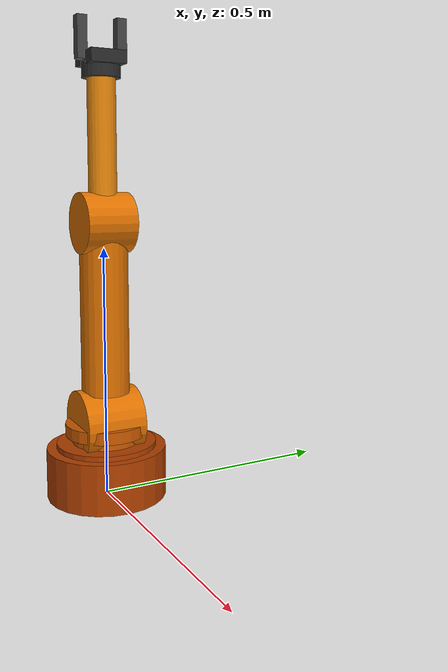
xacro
<?xml version="1.0"?>
<robot xmlns:xacro="http://www.ros.org/wiki/xacro" name="robotic_arm">
    <xacro:arg name="initial_positions_file" default="initial_positions.yaml" />

    <!-- Import robotic_arm urdf file -->
    <xacro:include filename="$(find robotic_arm_description)/urdf/robotic_arm.urdf.xacro" />

    <!-- Import control_xacro -->
    <xacro:include filename="robotic_arm.ros2_control.xacro" />

    <xacro:robotic_arm_ros2_control name="FakeSystem" initial_positions_file="$(arg initial_positions_file)"/>

</robot>

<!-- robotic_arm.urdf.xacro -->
<robot xmlns:xacro="http://www.ros.org/wiki/xacro" name="robotic_arm">

  <!-- Kuka-style orange gradient base → fingers -->
  <material name="c1"><color rgba="0.70 0.25 0.00 1"/></material>  <!-- base      — deep orange -->
  <material name="c2"><color rgba="0.80 0.35 0.00 1"/></material>  <!-- shoulder  -->
  <material name="c3"><color rgba="0.88 0.45 0.00 1"/></material>  <!-- upper arm -->
  <material name="c4"><color rgba="0.94 0.55 0.05 1"/></material>  <!-- forearm   -->
  <material name="c5"><color rgba="0.18 0.18 0.18 1"/></material>  <!-- wrist     — dark -->
  <material name="c6"><color rgba="0.28 0.28 0.28 1"/></material>  <!-- fingers   — dark grey -->

  <link name="world"/>
  <joint name="world_joint" type="fixed">
    <parent link="world"/>
    <child link="base_link"/>
    <origin xyz="0 0 0" rpy="0 0 0"/>
  </joint>

  <!-- BASE — wide cylinder with top coupling disc -->
  <link name="base_link">
    <visual>
      <origin xyz="0 0 0.05" rpy="0 0 0"/>
      <geometry><cylinder length="0.10" radius="0.12"/></geometry>
      <material name="c1"/>
    </visual>
    <visual>
      <origin xyz="0 0 0.105" rpy="0 0 0"/>
      <geometry><cylinder length="0.01" radius="0.10"/></geometry>
      <material name="c1"/>
    </visual>
    <collision>
      <geometry><cylinder length="0.1" radius="0.12"/></geometry>
    </collision>
  </link>

  <joint name="joint_1" type="continuous">
    <parent link="base_link"/>
    <child link="shoulder_link"/>
    <origin xyz="0 0 0.05" rpy="0 0 0"/>
    <axis xyz="0 0 1"/>
  </joint>

  <!-- SHOULDER — stacked disc / body / disc (Kuka style) -->
  <link name="shoulder_link">
    <visual>
      <!-- bottom coupling disc (joint_1 plane) -->
      <origin xyz="0 0 0.012" rpy="0 0 0"/>
      <geometry><cylinder length="0.024" radius="0.082"/></geometry>
      <material name="c2"/>
    </visual>
    <visual>
      <!-- shoulder body -->
      <origin xyz="0 0 0.052" rpy="0 0 0"/>
      <geometry><cylinder length="0.052" radius="0.068"/></geometry>
      <material name="c2"/>
    </visual>
    <visual>
      <!-- top coupling disc (joint_2 plane) -->
      <origin xyz="0 0 0.088" rpy="0 0 0"/>
      <geometry><cylinder length="0.024" radius="0.082"/></geometry>
      <material name="c2"/>
    </visual>
    <collision>
      <origin xyz="0 0 0.05" rpy="0 0 0"/>
      <geometry><cylinder length="0.1" radius="0.08"/></geometry>
    </collision>
  </link>

  <joint name="joint_2" type="revolute">
    <parent link="shoulder_link"/>
    <child link="upper_arm"/>
    <origin xyz="0 0 0.1" rpy="0 0 0"/>
    <axis xyz="0 1 0"/>
    <limit lower="-1.57" upper="1.57" effort="50.0" velocity="1.0"/>
  </joint>

  <!-- UPPER ARM — horizontal knuckle at joint_2, arm tube, knuckle at joint_3 end -->
  <link name="upper_arm">
    <visual>
      <!-- joint_2 horizontal knuckle (Y-axis pivot housing) -->
      <origin xyz="0 0 0" rpy="1.5708 0 0"/>
      <geometry><cylinder length="0.12" radius="0.068"/></geometry>
      <material name="c3"/>
    </visual>
    <visual>
      <!-- arm tube -->
      <origin xyz="0 0 0.22" rpy="0 0 0"/>
      <geometry><cylinder length="0.32" radius="0.048"/></geometry>
      <material name="c3"/>
    </visual>
    <visual>
      <!-- joint_3 horizontal knuckle at top end -->
      <origin xyz="0 0 0.40" rpy="1.5708 0 0"/>
      <geometry><cylinder length="0.10" radius="0.060"/></geometry>
      <material name="c3"/>
    </visual>
    <collision>
      <origin xyz="0 0 0.2" rpy="0 0 0"/>
      <geometry><cylinder length="0.4" radius="0.055"/></geometry>
    </collision>
  </link>

  <joint name="joint_3" type="revolute">
    <parent link="upper_arm"/>
    <child link="forearm"/>
    <origin xyz="0 0 0.4" rpy="0 0 0"/>
    <axis xyz="0 1 0"/>
    <limit lower="-2.0" upper="2.0" effort="30.0" velocity="1.5"/>
  </joint>

  <!-- FOREARM — horizontal knuckle at joint_3, slim forearm tube -->
  <link name="forearm">
    <visual>
      <!-- joint_3 horizontal knuckle (Y-axis pivot housing) -->
      <origin xyz="0 0 0" rpy="1.5708 0 0"/>
      <geometry><cylinder length="0.09" radius="0.050"/></geometry>
      <material name="c4"/>
    </visual>
    <visual>
      <!-- forearm tube -->
      <origin xyz="0 0 0.16" rpy="0 0 0"/>
      <geometry><cylinder length="0.26" radius="0.028"/></geometry>
      <material name="c4"/>
    </visual>
    <collision>
      <origin xyz="0 0 0.15" rpy="0 0 0"/>
      <geometry><cylinder length="0.3" radius="0.03"/></geometry>
    </collision>
  </link>

  <joint name="gripper_base_joint" type="fixed">
    <parent link="forearm"/>
    <child link="gripper_base"/>
    <origin xyz="0 0 0.3" rpy="0 0 0"/>
  </joint>

  <!-- WRIST + PALM -->
  <link name="gripper_base">
    <visual>
      <origin xyz="0 0 -0.008" rpy="0 0 0"/>
      <geometry><cylinder length="0.03" radius="0.038"/></geometry>
      <material name="c5"/>
    </visual>
    <visual>
      <origin xyz="0 0 0.013" rpy="0 0 0"/>
      <geometry><box size="0.088 0.072 0.025"/></geometry>
      <material name="c5"/>
    </visual>
    <collision>
      <geometry><box size="0.1 0.1 0.05"/></geometry>
    </collision>
  </link>

  <joint name="left_finger_joint" type="prismatic">
    <parent link="gripper_base"/>
    <child link="left_finger"/>
    <origin xyz="0 0.04 0.05" rpy="0 0 0"/>
    <axis xyz="0 1 0"/>
    <limit lower="-0.04" upper="0.0" effort="10.0" velocity="0.1"/>
  </joint>

  <!-- FINGERS -->
  <link name="left_finger">
    <visual>
      <geometry><box size="0.02 0.02 0.08"/></geometry>
      <material name="c6"/>
    </visual>
    <collision>
      <geometry><box size="0.02 0.02 0.08"/></geometry>
    </collision>
  </link>

  <joint name="right_finger_joint" type="prismatic">
    <parent link="gripper_base"/>
    <child link="right_finger"/>
    <origin xyz="0 -0.04 0.05" rpy="0 0 0"/>
    <axis xyz="0 1 0"/>
    <limit lower="0.0" upper="0.04" effort="10.0" velocity="0.1"/>
    <mimic joint="left_finger_joint" multiplier="-1.0" offset="0.0"/>
  </joint>

  <link name="right_finger">
    <visual>
      <geometry><box size="0.02 0.02 0.08"/></geometry>
      <material name="c6"/>
    </visual>
    <collision>
      <geometry><box size="0.02 0.02 0.08"/></geometry>
    </collision>
  </link>

  <link name="grasp_link"/>
  <joint name="grasp_link_joint" type="fixed">
    <parent link="gripper_base"/>
    <child link="grasp_link"/>
    <origin xyz="0 0 0.08" rpy="0 0 0"/>
  </joint>

  <ros2_control name="RoboticArmHardware" type="system">
    <hardware><plugin>mock_components/GenericSystem</plugin></hardware>
    <joint name="joint_1">
      <command_interface name="position"/><state_interface name="position"/>
    </joint>
    <joint name="joint_2">
      <command_interface name="position"/><state_interface name="position"/>
    </joint>
    <joint name="joint_3">
      <command_interface name="position"/><state_interface name="position"/>
    </joint>
    <joint name="left_finger_joint">
      <command_interface name="position"/><state_interface name="position"/>
    </joint>
    <joint name="right_finger_joint">
      <state_interface name="position"/>
    </joint>
  </ros2_control>

</robot>
